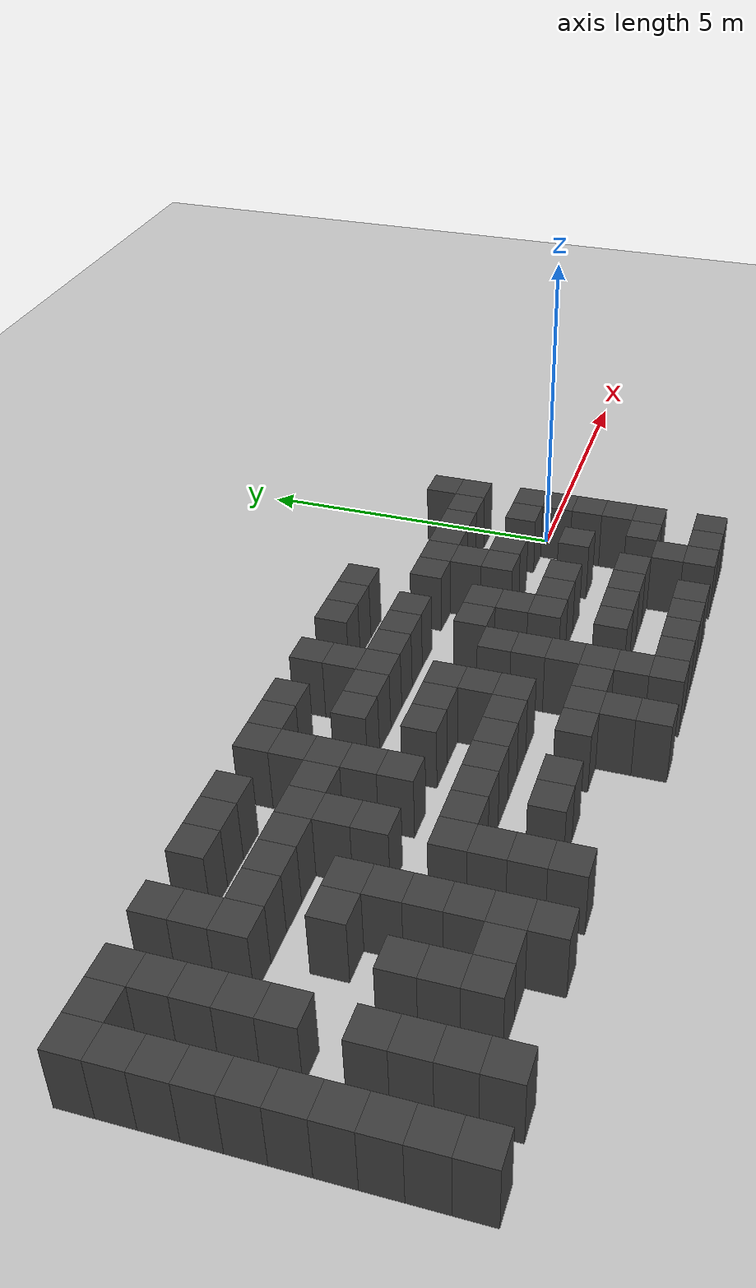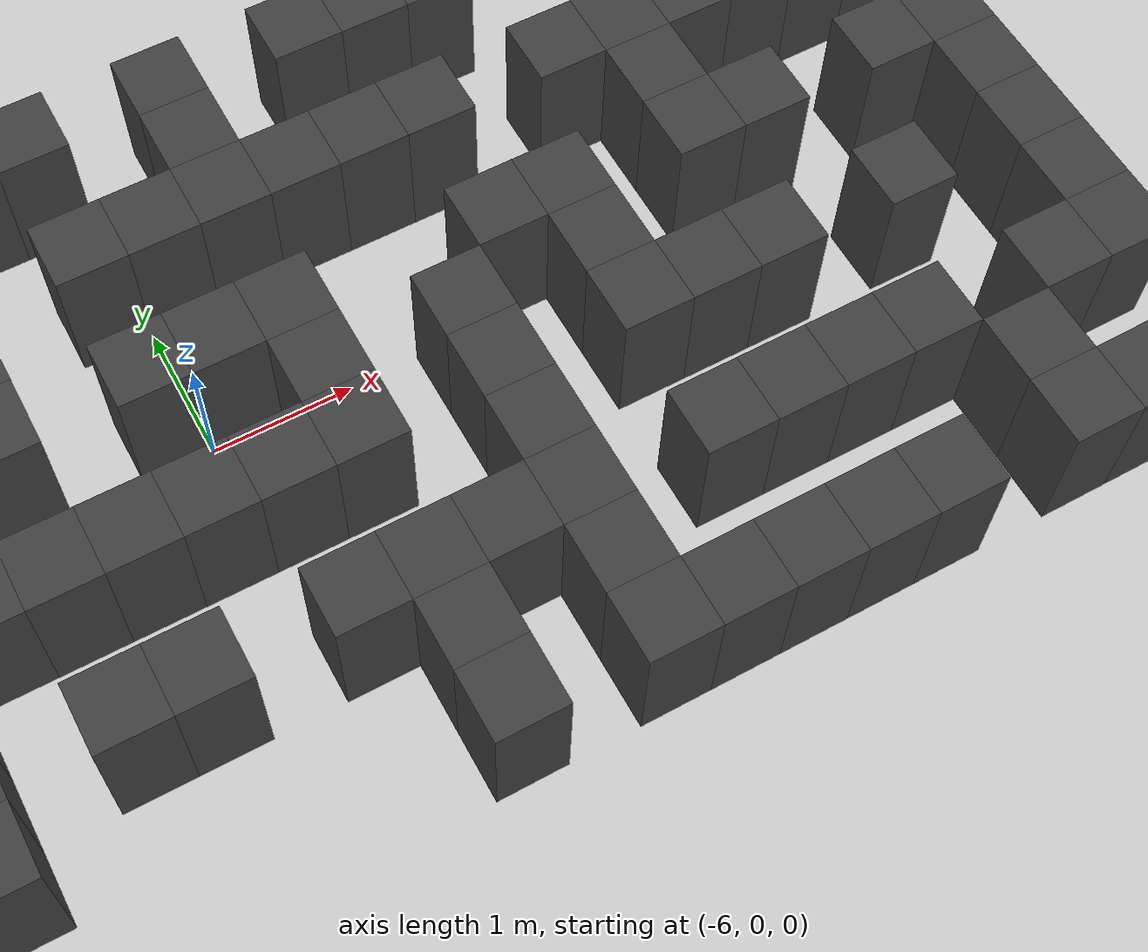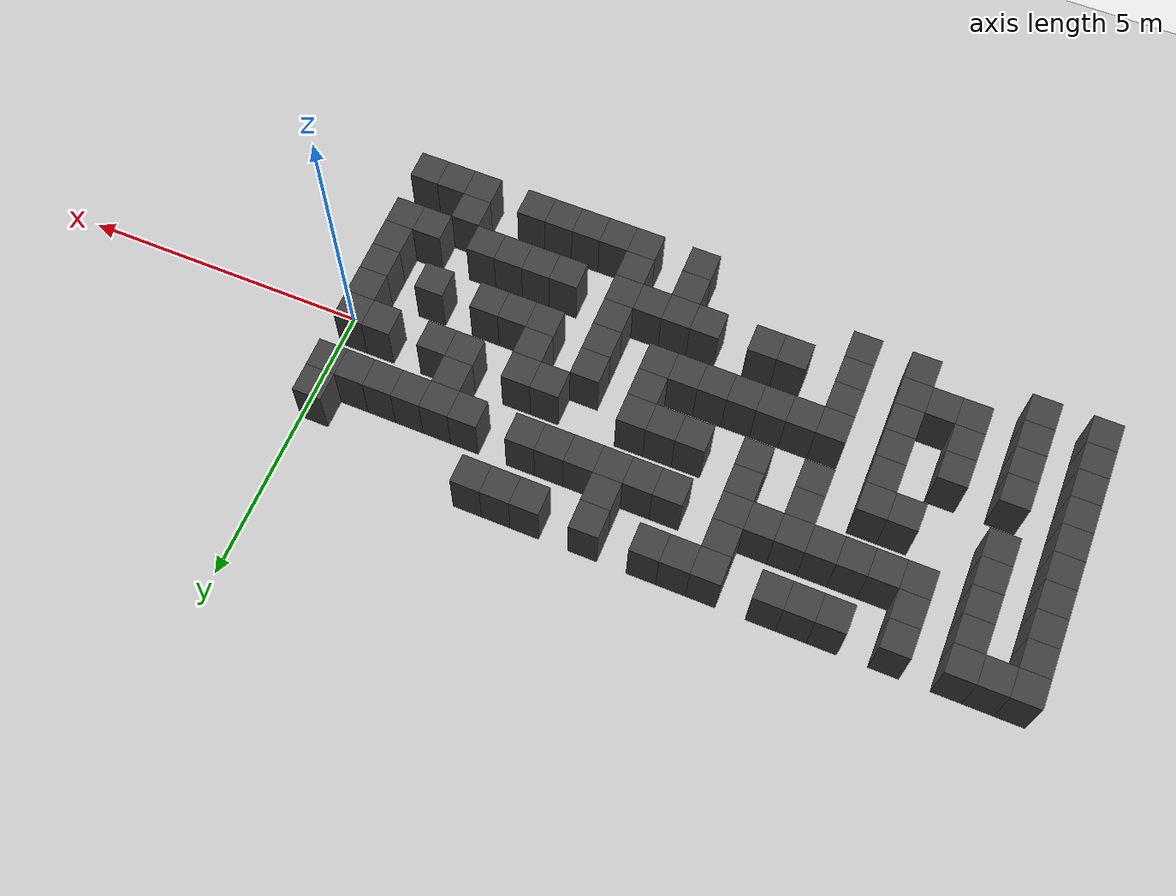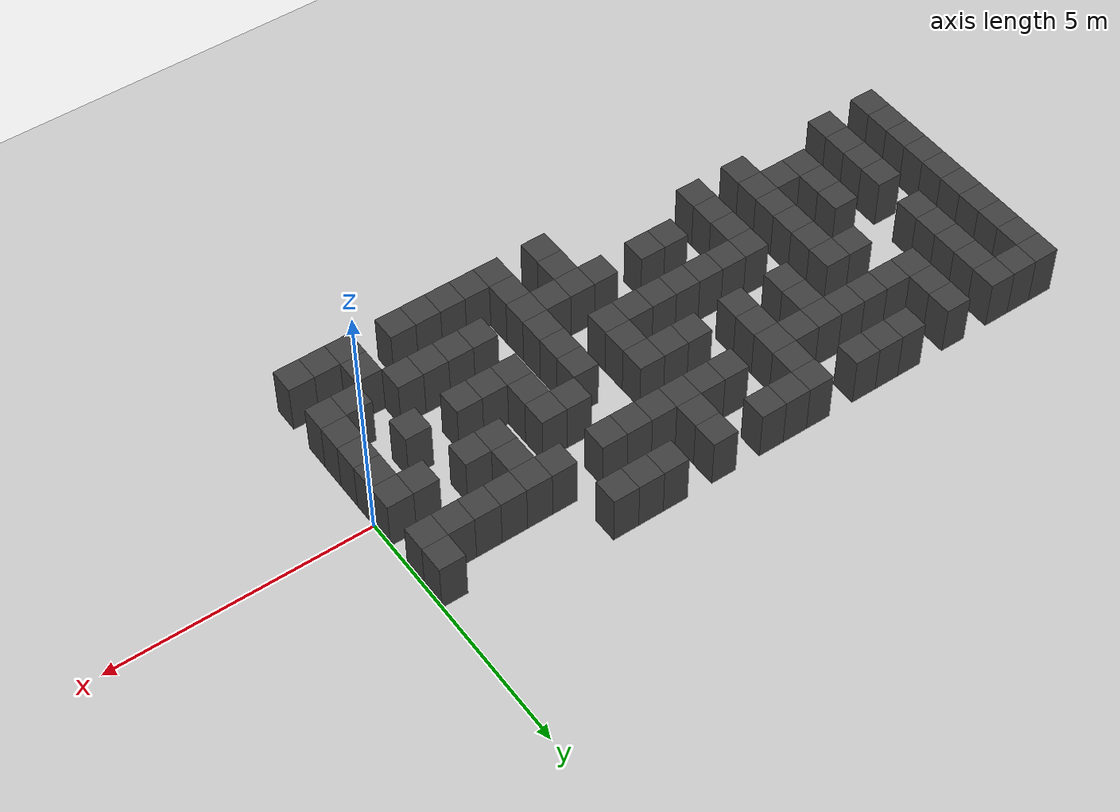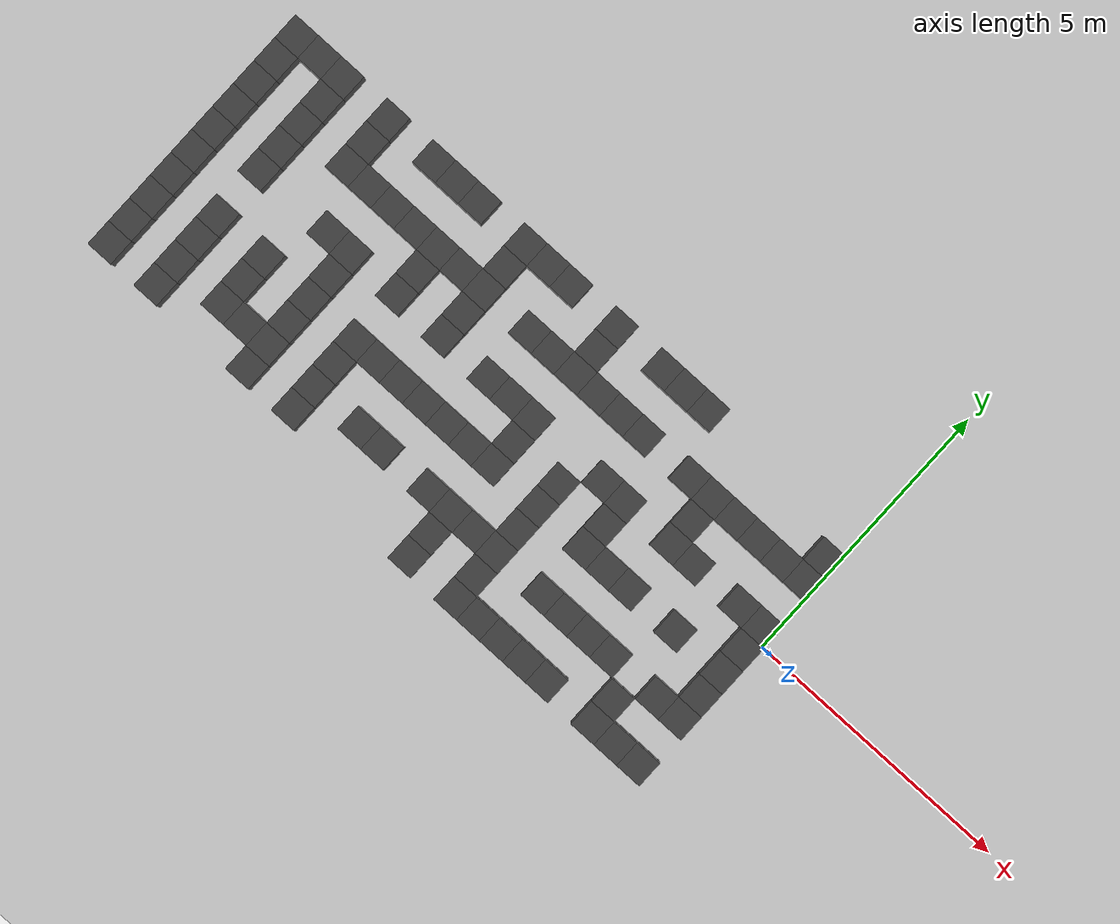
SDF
<sdf version="1.7">
 <world name="map_16668">
  <model name="ground_plane">
   <static>true</static>
   <link name="link">
    <collision name="collision">
     <geometry><plane><normal>0 0 1</normal><size>200 200</size></plane></geometry>
    </collision>
    <visual name="visual">
     <geometry><plane><normal>0 0 1</normal><size>200 200</size></plane></geometry>
     <material><ambient>0.8 0.8 0.8 1</ambient><diffuse>0.8 0.8 0.8 1</diffuse></material>
    </visual>
   </link>
  </model>
  <model name="maze_environment">
   <static>true</static>
   <link name="wall_480">
    <pose>-12.250 2.250 0.500 0 0 0</pose>
    <collision name="col"><geometry><box><size>0.5 0.5 1.0</size></box></geometry></collision>
    <visual name="vis">
     <geometry><box><size>0.5 0.5 1.0</size></box></geometry>
     <material><ambient>0.15 0.15 0.15 1</ambient><diffuse>0.25 0.25 0.25 1</diffuse></material>
    </visual>
   </link>
   <link name="wall_481">
    <pose>-11.750 2.250 0.500 0 0 0</pose>
    <collision name="col"><geometry><box><size>0.5 0.5 1.0</size></box></geometry></collision>
    <visual name="vis">
     <geometry><box><size>0.5 0.5 1.0</size></box></geometry>
     <material><ambient>0.15 0.15 0.15 1</ambient><diffuse>0.25 0.25 0.25 1</diffuse></material>
    </visual>
   </link>
   <link name="wall_482">
    <pose>-11.250 2.250 0.500 0 0 0</pose>
    <collision name="col"><geometry><box><size>0.5 0.5 1.0</size></box></geometry></collision>
    <visual name="vis">
     <geometry><box><size>0.5 0.5 1.0</size></box></geometry>
     <material><ambient>0.15 0.15 0.15 1</ambient><diffuse>0.25 0.25 0.25 1</diffuse></material>
    </visual>
   </link>
   <link name="wall_483">
    <pose>-10.250 2.250 0.500 0 0 0</pose>
    <collision name="col"><geometry><box><size>0.5 0.5 1.0</size></box></geometry></collision>
    <visual name="vis">
     <geometry><box><size>0.5 0.5 1.0</size></box></geometry>
     <material><ambient>0.15 0.15 0.15 1</ambient><diffuse>0.25 0.25 0.25 1</diffuse></material>
    </visual>
   </link>
   <link name="wall_484">
    <pose>-9.250 2.250 0.500 0 0 0</pose>
    <collision name="col"><geometry><box><size>0.5 0.5 1.0</size></box></geometry></collision>
    <visual name="vis">
     <geometry><box><size>0.5 0.5 1.0</size></box></geometry>
     <material><ambient>0.15 0.15 0.15 1</ambient><diffuse>0.25 0.25 0.25 1</diffuse></material>
    </visual>
   </link>
   <link name="wall_485">
    <pose>-8.750 2.250 0.500 0 0 0</pose>
    <collision name="col"><geometry><box><size>0.5 0.5 1.0</size></box></geometry></collision>
    <visual name="vis">
     <geometry><box><size>0.5 0.5 1.0</size></box></geometry>
     <material><ambient>0.15 0.15 0.15 1</ambient><diffuse>0.25 0.25 0.25 1</diffuse></material>
    </visual>
   </link>
   <link name="wall_486">
    <pose>-8.250 2.250 0.500 0 0 0</pose>
    <collision name="col"><geometry><box><size>0.5 0.5 1.0</size></box></geometry></collision>
    <visual name="vis">
     <geometry><box><size>0.5 0.5 1.0</size></box></geometry>
     <material><ambient>0.15 0.15 0.15 1</ambient><diffuse>0.25 0.25 0.25 1</diffuse></material>
    </visual>
   </link>
   <link name="wall_487">
    <pose>-7.250 2.250 0.500 0 0 0</pose>
    <collision name="col"><geometry><box><size>0.5 0.5 1.0</size></box></geometry></collision>
    <visual name="vis">
     <geometry><box><size>0.5 0.5 1.0</size></box></geometry>
     <material><ambient>0.15 0.15 0.15 1</ambient><diffuse>0.25 0.25 0.25 1</diffuse></material>
    </visual>
   </link>
   <link name="wall_488">
    <pose>-6.750 2.250 0.500 0 0 0</pose>
    <collision name="col"><geometry><box><size>0.5 0.5 1.0</size></box></geometry></collision>
    <visual name="vis">
     <geometry><box><size>0.5 0.5 1.0</size></box></geometry>
     <material><ambient>0.15 0.15 0.15 1</ambient><diffuse>0.25 0.25 0.25 1</diffuse></material>
    </visual>
   </link>
   <link name="wall_489">
    <pose>-6.250 2.250 0.500 0 0 0</pose>
    <collision name="col"><geometry><box><size>0.5 0.5 1.0</size></box></geometry></collision>
    <visual name="vis">
     <geometry><box><size>0.5 0.5 1.0</size></box></geometry>
     <material><ambient>0.15 0.15 0.15 1</ambient><diffuse>0.25 0.25 0.25 1</diffuse></material>
    </visual>
   </link>
   <link name="wall_490">
    <pose>-5.250 2.250 0.500 0 0 0</pose>
    <collision name="col"><geometry><box><size>0.5 0.5 1.0</size></box></geometry></collision>
    <visual name="vis">
     <geometry><box><size>0.5 0.5 1.0</size></box></geometry>
     <material><ambient>0.15 0.15 0.15 1</ambient><diffuse>0.25 0.25 0.25 1</diffuse></material>
    </visual>
   </link>
   <link name="wall_491">
    <pose>-4.250 2.250 0.500 0 0 0</pose>
    <collision name="col"><geometry><box><size>0.5 0.5 1.0</size></box></geometry></collision>
    <visual name="vis">
     <geometry><box><size>0.5 0.5 1.0</size></box></geometry>
     <material><ambient>0.15 0.15 0.15 1</ambient><diffuse>0.25 0.25 0.25 1</diffuse></material>
    </visual>
   </link>
   <link name="wall_492">
    <pose>-3.750 2.250 0.500 0 0 0</pose>
    <collision name="col"><geometry><box><size>0.5 0.5 1.0</size></box></geometry></collision>
    <visual name="vis">
     <geometry><box><size>0.5 0.5 1.0</size></box></geometry>
     <material><ambient>0.15 0.15 0.15 1</ambient><diffuse>0.25 0.25 0.25 1</diffuse></material>
    </visual>
   </link>
   <link name="wall_493">
    <pose>-3.250 2.250 0.500 0 0 0</pose>
    <collision name="col"><geometry><box><size>0.5 0.5 1.0</size></box></geometry></collision>
    <visual name="vis">
     <geometry><box><size>0.5 0.5 1.0</size></box></geometry>
     <material><ambient>0.15 0.15 0.15 1</ambient><diffuse>0.25 0.25 0.25 1</diffuse></material>
    </visual>
   </link>
   <link name="wall_514">
    <pose>-12.250 1.750 0.500 0 0 0</pose>
    <collision name="col"><geometry><box><size>0.5 0.5 1.0</size></box></geometry></collision>
    <visual name="vis">
     <geometry><box><size>0.5 0.5 1.0</size></box></geometry>
     <material><ambient>0.15 0.15 0.15 1</ambient><diffuse>0.25 0.25 0.25 1</diffuse></material>
    </visual>
   </link>
   <link name="wall_515">
    <pose>-11.250 1.750 0.500 0 0 0</pose>
    <collision name="col"><geometry><box><size>0.5 0.5 1.0</size></box></geometry></collision>
    <visual name="vis">
     <geometry><box><size>0.5 0.5 1.0</size></box></geometry>
     <material><ambient>0.15 0.15 0.15 1</ambient><diffuse>0.25 0.25 0.25 1</diffuse></material>
    </visual>
   </link>
   <link name="wall_516">
    <pose>-10.250 1.750 0.500 0 0 0</pose>
    <collision name="col"><geometry><box><size>0.5 0.5 1.0</size></box></geometry></collision>
    <visual name="vis">
     <geometry><box><size>0.5 0.5 1.0</size></box></geometry>
     <material><ambient>0.15 0.15 0.15 1</ambient><diffuse>0.25 0.25 0.25 1</diffuse></material>
    </visual>
   </link>
   <link name="wall_517">
    <pose>-7.250 1.750 0.500 0 0 0</pose>
    <collision name="col"><geometry><box><size>0.5 0.5 1.0</size></box></geometry></collision>
    <visual name="vis">
     <geometry><box><size>0.5 0.5 1.0</size></box></geometry>
     <material><ambient>0.15 0.15 0.15 1</ambient><diffuse>0.25 0.25 0.25 1</diffuse></material>
    </visual>
   </link>
   <link name="wall_518">
    <pose>-5.250 1.750 0.500 0 0 0</pose>
    <collision name="col"><geometry><box><size>0.5 0.5 1.0</size></box></geometry></collision>
    <visual name="vis">
     <geometry><box><size>0.5 0.5 1.0</size></box></geometry>
     <material><ambient>0.15 0.15 0.15 1</ambient><diffuse>0.25 0.25 0.25 1</diffuse></material>
    </visual>
   </link>
   <link name="wall_519">
    <pose>-0.250 1.750 0.500 0 0 0</pose>
    <collision name="col"><geometry><box><size>0.5 0.5 1.0</size></box></geometry></collision>
    <visual name="vis">
     <geometry><box><size>0.5 0.5 1.0</size></box></geometry>
     <material><ambient>0.15 0.15 0.15 1</ambient><diffuse>0.25 0.25 0.25 1</diffuse></material>
    </visual>
   </link>
   <link name="wall_528">
    <pose>-12.250 1.250 0.500 0 0 0</pose>
    <collision name="col"><geometry><box><size>0.5 0.5 1.0</size></box></geometry></collision>
    <visual name="vis">
     <geometry><box><size>0.5 0.5 1.0</size></box></geometry>
     <material><ambient>0.15 0.15 0.15 1</ambient><diffuse>0.25 0.25 0.25 1</diffuse></material>
    </visual>
   </link>
   <link name="wall_529">
    <pose>-11.250 1.250 0.500 0 0 0</pose>
    <collision name="col"><geometry><box><size>0.5 0.5 1.0</size></box></geometry></collision>
    <visual name="vis">
     <geometry><box><size>0.5 0.5 1.0</size></box></geometry>
     <material><ambient>0.15 0.15 0.15 1</ambient><diffuse>0.25 0.25 0.25 1</diffuse></material>
    </visual>
   </link>
   <link name="wall_530">
    <pose>-10.250 1.250 0.500 0 0 0</pose>
    <collision name="col"><geometry><box><size>0.5 0.5 1.0</size></box></geometry></collision>
    <visual name="vis">
     <geometry><box><size>0.5 0.5 1.0</size></box></geometry>
     <material><ambient>0.15 0.15 0.15 1</ambient><diffuse>0.25 0.25 0.25 1</diffuse></material>
    </visual>
   </link>
   <link name="wall_531">
    <pose>-9.750 1.250 0.500 0 0 0</pose>
    <collision name="col"><geometry><box><size>0.5 0.5 1.0</size></box></geometry></collision>
    <visual name="vis">
     <geometry><box><size>0.5 0.5 1.0</size></box></geometry>
     <material><ambient>0.15 0.15 0.15 1</ambient><diffuse>0.25 0.25 0.25 1</diffuse></material>
    </visual>
   </link>
   <link name="wall_532">
    <pose>-9.250 1.250 0.500 0 0 0</pose>
    <collision name="col"><geometry><box><size>0.5 0.5 1.0</size></box></geometry></collision>
    <visual name="vis">
     <geometry><box><size>0.5 0.5 1.0</size></box></geometry>
     <material><ambient>0.15 0.15 0.15 1</ambient><diffuse>0.25 0.25 0.25 1</diffuse></material>
    </visual>
   </link>
   <link name="wall_533">
    <pose>-8.750 1.250 0.500 0 0 0</pose>
    <collision name="col"><geometry><box><size>0.5 0.5 1.0</size></box></geometry></collision>
    <visual name="vis">
     <geometry><box><size>0.5 0.5 1.0</size></box></geometry>
     <material><ambient>0.15 0.15 0.15 1</ambient><diffuse>0.25 0.25 0.25 1</diffuse></material>
    </visual>
   </link>
   <link name="wall_534">
    <pose>-8.250 1.250 0.500 0 0 0</pose>
    <collision name="col"><geometry><box><size>0.5 0.5 1.0</size></box></geometry></collision>
    <visual name="vis">
     <geometry><box><size>0.5 0.5 1.0</size></box></geometry>
     <material><ambient>0.15 0.15 0.15 1</ambient><diffuse>0.25 0.25 0.25 1</diffuse></material>
    </visual>
   </link>
   <link name="wall_535">
    <pose>-7.750 1.250 0.500 0 0 0</pose>
    <collision name="col"><geometry><box><size>0.5 0.5 1.0</size></box></geometry></collision>
    <visual name="vis">
     <geometry><box><size>0.5 0.5 1.0</size></box></geometry>
     <material><ambient>0.15 0.15 0.15 1</ambient><diffuse>0.25 0.25 0.25 1</diffuse></material>
    </visual>
   </link>
   <link name="wall_536">
    <pose>-7.250 1.250 0.500 0 0 0</pose>
    <collision name="col"><geometry><box><size>0.5 0.5 1.0</size></box></geometry></collision>
    <visual name="vis">
     <geometry><box><size>0.5 0.5 1.0</size></box></geometry>
     <material><ambient>0.15 0.15 0.15 1</ambient><diffuse>0.25 0.25 0.25 1</diffuse></material>
    </visual>
   </link>
   <link name="wall_537">
    <pose>-6.250 1.250 0.500 0 0 0</pose>
    <collision name="col"><geometry><box><size>0.5 0.5 1.0</size></box></geometry></collision>
    <visual name="vis">
     <geometry><box><size>0.5 0.5 1.0</size></box></geometry>
     <material><ambient>0.15 0.15 0.15 1</ambient><diffuse>0.25 0.25 0.25 1</diffuse></material>
    </visual>
   </link>
   <link name="wall_538">
    <pose>-5.750 1.250 0.500 0 0 0</pose>
    <collision name="col"><geometry><box><size>0.5 0.5 1.0</size></box></geometry></collision>
    <visual name="vis">
     <geometry><box><size>0.5 0.5 1.0</size></box></geometry>
     <material><ambient>0.15 0.15 0.15 1</ambient><diffuse>0.25 0.25 0.25 1</diffuse></material>
    </visual>
   </link>
   <link name="wall_539">
    <pose>-5.250 1.250 0.500 0 0 0</pose>
    <collision name="col"><geometry><box><size>0.5 0.5 1.0</size></box></geometry></collision>
    <visual name="vis">
     <geometry><box><size>0.5 0.5 1.0</size></box></geometry>
     <material><ambient>0.15 0.15 0.15 1</ambient><diffuse>0.25 0.25 0.25 1</diffuse></material>
    </visual>
   </link>
   <link name="wall_540">
    <pose>-4.750 1.250 0.500 0 0 0</pose>
    <collision name="col"><geometry><box><size>0.5 0.5 1.0</size></box></geometry></collision>
    <visual name="vis">
     <geometry><box><size>0.5 0.5 1.0</size></box></geometry>
     <material><ambient>0.15 0.15 0.15 1</ambient><diffuse>0.25 0.25 0.25 1</diffuse></material>
    </visual>
   </link>
   <link name="wall_541">
    <pose>-4.250 1.250 0.500 0 0 0</pose>
    <collision name="col"><geometry><box><size>0.5 0.5 1.0</size></box></geometry></collision>
    <visual name="vis">
     <geometry><box><size>0.5 0.5 1.0</size></box></geometry>
     <material><ambient>0.15 0.15 0.15 1</ambient><diffuse>0.25 0.25 0.25 1</diffuse></material>
    </visual>
   </link>
   <link name="wall_542">
    <pose>-3.750 1.250 0.500 0 0 0</pose>
    <collision name="col"><geometry><box><size>0.5 0.5 1.0</size></box></geometry></collision>
    <visual name="vis">
     <geometry><box><size>0.5 0.5 1.0</size></box></geometry>
     <material><ambient>0.15 0.15 0.15 1</ambient><diffuse>0.25 0.25 0.25 1</diffuse></material>
    </visual>
   </link>
   <link name="wall_543">
    <pose>-2.750 1.250 0.500 0 0 0</pose>
    <collision name="col"><geometry><box><size>0.5 0.5 1.0</size></box></geometry></collision>
    <visual name="vis">
     <geometry><box><size>0.5 0.5 1.0</size></box></geometry>
     <material><ambient>0.15 0.15 0.15 1</ambient><diffuse>0.25 0.25 0.25 1</diffuse></material>
    </visual>
   </link>
   <link name="wall_544">
    <pose>-2.250 1.250 0.500 0 0 0</pose>
    <collision name="col"><geometry><box><size>0.5 0.5 1.0</size></box></geometry></collision>
    <visual name="vis">
     <geometry><box><size>0.5 0.5 1.0</size></box></geometry>
     <material><ambient>0.15 0.15 0.15 1</ambient><diffuse>0.25 0.25 0.25 1</diffuse></material>
    </visual>
   </link>
   <link name="wall_545">
    <pose>-1.750 1.250 0.500 0 0 0</pose>
    <collision name="col"><geometry><box><size>0.5 0.5 1.0</size></box></geometry></collision>
    <visual name="vis">
     <geometry><box><size>0.5 0.5 1.0</size></box></geometry>
     <material><ambient>0.15 0.15 0.15 1</ambient><diffuse>0.25 0.25 0.25 1</diffuse></material>
    </visual>
   </link>
   <link name="wall_546">
    <pose>-1.250 1.250 0.500 0 0 0</pose>
    <collision name="col"><geometry><box><size>0.5 0.5 1.0</size></box></geometry></collision>
    <visual name="vis">
     <geometry><box><size>0.5 0.5 1.0</size></box></geometry>
     <material><ambient>0.15 0.15 0.15 1</ambient><diffuse>0.25 0.25 0.25 1</diffuse></material>
    </visual>
   </link>
   <link name="wall_547">
    <pose>-0.750 1.250 0.500 0 0 0</pose>
    <collision name="col"><geometry><box><size>0.5 0.5 1.0</size></box></geometry></collision>
    <visual name="vis">
     <geometry><box><size>0.5 0.5 1.0</size></box></geometry>
     <material><ambient>0.15 0.15 0.15 1</ambient><diffuse>0.25 0.25 0.25 1</diffuse></material>
    </visual>
   </link>
   <link name="wall_548">
    <pose>-0.250 1.250 0.500 0 0 0</pose>
    <collision name="col"><geometry><box><size>0.5 0.5 1.0</size></box></geometry></collision>
    <visual name="vis">
     <geometry><box><size>0.5 0.5 1.0</size></box></geometry>
     <material><ambient>0.15 0.15 0.15 1</ambient><diffuse>0.25 0.25 0.25 1</diffuse></material>
    </visual>
   </link>
   <link name="wall_565">
    <pose>-12.250 0.750 0.500 0 0 0</pose>
    <collision name="col"><geometry><box><size>0.5 0.5 1.0</size></box></geometry></collision>
    <visual name="vis">
     <geometry><box><size>0.5 0.5 1.0</size></box></geometry>
     <material><ambient>0.15 0.15 0.15 1</ambient><diffuse>0.25 0.25 0.25 1</diffuse></material>
    </visual>
   </link>
   <link name="wall_566">
    <pose>-11.250 0.750 0.500 0 0 0</pose>
    <collision name="col"><geometry><box><size>0.5 0.5 1.0</size></box></geometry></collision>
    <visual name="vis">
     <geometry><box><size>0.5 0.5 1.0</size></box></geometry>
     <material><ambient>0.15 0.15 0.15 1</ambient><diffuse>0.25 0.25 0.25 1</diffuse></material>
    </visual>
   </link>
   <link name="wall_567">
    <pose>-8.250 0.750 0.500 0 0 0</pose>
    <collision name="col"><geometry><box><size>0.5 0.5 1.0</size></box></geometry></collision>
    <visual name="vis">
     <geometry><box><size>0.5 0.5 1.0</size></box></geometry>
     <material><ambient>0.15 0.15 0.15 1</ambient><diffuse>0.25 0.25 0.25 1</diffuse></material>
    </visual>
   </link>
   <link name="wall_568">
    <pose>-7.250 0.750 0.500 0 0 0</pose>
    <collision name="col"><geometry><box><size>0.5 0.5 1.0</size></box></geometry></collision>
    <visual name="vis">
     <geometry><box><size>0.5 0.5 1.0</size></box></geometry>
     <material><ambient>0.15 0.15 0.15 1</ambient><diffuse>0.25 0.25 0.25 1</diffuse></material>
    </visual>
   </link>
   <link name="wall_569">
    <pose>-2.250 0.750 0.500 0 0 0</pose>
    <collision name="col"><geometry><box><size>0.5 0.5 1.0</size></box></geometry></collision>
    <visual name="vis">
     <geometry><box><size>0.5 0.5 1.0</size></box></geometry>
     <material><ambient>0.15 0.15 0.15 1</ambient><diffuse>0.25 0.25 0.25 1</diffuse></material>
    </visual>
   </link>
   <link name="wall_575">
    <pose>-12.250 0.250 0.500 0 0 0</pose>
    <collision name="col"><geometry><box><size>0.5 0.5 1.0</size></box></geometry></collision>
    <visual name="vis">
     <geometry><box><size>0.5 0.5 1.0</size></box></geometry>
     <material><ambient>0.15 0.15 0.15 1</ambient><diffuse>0.25 0.25 0.25 1</diffuse></material>
    </visual>
   </link>
   <link name="wall_576">
    <pose>-11.250 0.250 0.500 0 0 0</pose>
    <collision name="col"><geometry><box><size>0.5 0.5 1.0</size></box></geometry></collision>
    <visual name="vis">
     <geometry><box><size>0.5 0.5 1.0</size></box></geometry>
     <material><ambient>0.15 0.15 0.15 1</ambient><diffuse>0.25 0.25 0.25 1</diffuse></material>
    </visual>
   </link>
   <link name="wall_577">
    <pose>-9.750 0.250 0.500 0 0 0</pose>
    <collision name="col"><geometry><box><size>0.5 0.5 1.0</size></box></geometry></collision>
    <visual name="vis">
     <geometry><box><size>0.5 0.5 1.0</size></box></geometry>
     <material><ambient>0.15 0.15 0.15 1</ambient><diffuse>0.25 0.25 0.25 1</diffuse></material>
    </visual>
   </link>
   <link name="wall_578">
    <pose>-9.250 0.250 0.500 0 0 0</pose>
    <collision name="col"><geometry><box><size>0.5 0.5 1.0</size></box></geometry></collision>
    <visual name="vis">
     <geometry><box><size>0.5 0.5 1.0</size></box></geometry>
     <material><ambient>0.15 0.15 0.15 1</ambient><diffuse>0.25 0.25 0.25 1</diffuse></material>
    </visual>
   </link>
   <link name="wall_579">
    <pose>-8.250 0.250 0.500 0 0 0</pose>
    <collision name="col"><geometry><box><size>0.5 0.5 1.0</size></box></geometry></collision>
    <visual name="vis">
     <geometry><box><size>0.5 0.5 1.0</size></box></geometry>
     <material><ambient>0.15 0.15 0.15 1</ambient><diffuse>0.25 0.25 0.25 1</diffuse></material>
    </visual>
   </link>
   <link name="wall_580">
    <pose>-7.250 0.250 0.500 0 0 0</pose>
    <collision name="col"><geometry><box><size>0.5 0.5 1.0</size></box></geometry></collision>
    <visual name="vis">
     <geometry><box><size>0.5 0.5 1.0</size></box></geometry>
     <material><ambient>0.15 0.15 0.15 1</ambient><diffuse>0.25 0.25 0.25 1</diffuse></material>
    </visual>
   </link>
   <link name="wall_581">
    <pose>-6.250 0.250 0.500 0 0 0</pose>
    <collision name="col"><geometry><box><size>0.5 0.5 1.0</size></box></geometry></collision>
    <visual name="vis">
     <geometry><box><size>0.5 0.5 1.0</size></box></geometry>
     <material><ambient>0.15 0.15 0.15 1</ambient><diffuse>0.25 0.25 0.25 1</diffuse></material>
    </visual>
   </link>
   <link name="wall_582">
    <pose>-5.750 0.250 0.500 0 0 0</pose>
    <collision name="col"><geometry><box><size>0.5 0.5 1.0</size></box></geometry></collision>
    <visual name="vis">
     <geometry><box><size>0.5 0.5 1.0</size></box></geometry>
     <material><ambient>0.15 0.15 0.15 1</ambient><diffuse>0.25 0.25 0.25 1</diffuse></material>
    </visual>
   </link>
   <link name="wall_583">
    <pose>-5.250 0.250 0.500 0 0 0</pose>
    <collision name="col"><geometry><box><size>0.5 0.5 1.0</size></box></geometry></collision>
    <visual name="vis">
     <geometry><box><size>0.5 0.5 1.0</size></box></geometry>
     <material><ambient>0.15 0.15 0.15 1</ambient><diffuse>0.25 0.25 0.25 1</diffuse></material>
    </visual>
   </link>
   <link name="wall_584">
    <pose>-3.750 0.250 0.500 0 0 0</pose>
    <collision name="col"><geometry><box><size>0.5 0.5 1.0</size></box></geometry></collision>
    <visual name="vis">
     <geometry><box><size>0.5 0.5 1.0</size></box></geometry>
     <material><ambient>0.15 0.15 0.15 1</ambient><diffuse>0.25 0.25 0.25 1</diffuse></material>
    </visual>
   </link>
   <link name="wall_585">
    <pose>-3.250 0.250 0.500 0 0 0</pose>
    <collision name="col"><geometry><box><size>0.5 0.5 1.0</size></box></geometry></collision>
    <visual name="vis">
     <geometry><box><size>0.5 0.5 1.0</size></box></geometry>
     <material><ambient>0.15 0.15 0.15 1</ambient><diffuse>0.25 0.25 0.25 1</diffuse></material>
    </visual>
   </link>
   <link name="wall_586">
    <pose>-2.250 0.250 0.500 0 0 0</pose>
    <collision name="col"><geometry><box><size>0.5 0.5 1.0</size></box></geometry></collision>
    <visual name="vis">
     <geometry><box><size>0.5 0.5 1.0</size></box></geometry>
     <material><ambient>0.15 0.15 0.15 1</ambient><diffuse>0.25 0.25 0.25 1</diffuse></material>
    </visual>
   </link>
   <link name="wall_587">
    <pose>-1.750 0.250 0.500 0 0 0</pose>
    <collision name="col"><geometry><box><size>0.5 0.5 1.0</size></box></geometry></collision>
    <visual name="vis">
     <geometry><box><size>0.5 0.5 1.0</size></box></geometry>
     <material><ambient>0.15 0.15 0.15 1</ambient><diffuse>0.25 0.25 0.25 1</diffuse></material>
    </visual>
   </link>
   <link name="wall_588">
    <pose>-0.750 0.250 0.500 0 0 0</pose>
    <collision name="col"><geometry><box><size>0.5 0.5 1.0</size></box></geometry></collision>
    <visual name="vis">
     <geometry><box><size>0.5 0.5 1.0</size></box></geometry>
     <material><ambient>0.15 0.15 0.15 1</ambient><diffuse>0.25 0.25 0.25 1</diffuse></material>
    </visual>
   </link>
   <link name="wall_589">
    <pose>-0.250 0.250 0.500 0 0 0</pose>
    <collision name="col"><geometry><box><size>0.5 0.5 1.0</size></box></geometry></collision>
    <visual name="vis">
     <geometry><box><size>0.5 0.5 1.0</size></box></geometry>
     <material><ambient>0.15 0.15 0.15 1</ambient><diffuse>0.25 0.25 0.25 1</diffuse></material>
    </visual>
   </link>
   <link name="wall_605">
    <pose>-12.250 -0.250 0.500 0 0 0</pose>
    <collision name="col"><geometry><box><size>0.5 0.5 1.0</size></box></geometry></collision>
    <visual name="vis">
     <geometry><box><size>0.5 0.5 1.0</size></box></geometry>
     <material><ambient>0.15 0.15 0.15 1</ambient><diffuse>0.25 0.25 0.25 1</diffuse></material>
    </visual>
   </link>
   <link name="wall_606">
    <pose>-9.250 -0.250 0.500 0 0 0</pose>
    <collision name="col"><geometry><box><size>0.5 0.5 1.0</size></box></geometry></collision>
    <visual name="vis">
     <geometry><box><size>0.5 0.5 1.0</size></box></geometry>
     <material><ambient>0.15 0.15 0.15 1</ambient><diffuse>0.25 0.25 0.25 1</diffuse></material>
    </visual>
   </link>
   <link name="wall_607">
    <pose>-5.250 -0.250 0.500 0 0 0</pose>
    <collision name="col"><geometry><box><size>0.5 0.5 1.0</size></box></geometry></collision>
    <visual name="vis">
     <geometry><box><size>0.5 0.5 1.0</size></box></geometry>
     <material><ambient>0.15 0.15 0.15 1</ambient><diffuse>0.25 0.25 0.25 1</diffuse></material>
    </visual>
   </link>
   <link name="wall_608">
    <pose>-4.250 -0.250 0.500 0 0 0</pose>
    <collision name="col"><geometry><box><size>0.5 0.5 1.0</size></box></geometry></collision>
    <visual name="vis">
     <geometry><box><size>0.5 0.5 1.0</size></box></geometry>
     <material><ambient>0.15 0.15 0.15 1</ambient><diffuse>0.25 0.25 0.25 1</diffuse></material>
    </visual>
   </link>
   <link name="wall_609">
    <pose>-3.250 -0.250 0.500 0 0 0</pose>
    <collision name="col"><geometry><box><size>0.5 0.5 1.0</size></box></geometry></collision>
    <visual name="vis">
     <geometry><box><size>0.5 0.5 1.0</size></box></geometry>
     <material><ambient>0.15 0.15 0.15 1</ambient><diffuse>0.25 0.25 0.25 1</diffuse></material>
    </visual>
   </link>
   <link name="wall_610">
    <pose>-0.250 -0.250 0.500 0 0 0</pose>
    <collision name="col"><geometry><box><size>0.5 0.5 1.0</size></box></geometry></collision>
    <visual name="vis">
     <geometry><box><size>0.5 0.5 1.0</size></box></geometry>
     <material><ambient>0.15 0.15 0.15 1</ambient><diffuse>0.25 0.25 0.25 1</diffuse></material>
    </visual>
   </link>
   <link name="wall_618">
    <pose>-12.250 -0.750 0.500 0 0 0</pose>
    <collision name="col"><geometry><box><size>0.5 0.5 1.0</size></box></geometry></collision>
    <visual name="vis">
     <geometry><box><size>0.5 0.5 1.0</size></box></geometry>
     <material><ambient>0.15 0.15 0.15 1</ambient><diffuse>0.25 0.25 0.25 1</diffuse></material>
    </visual>
   </link>
   <link name="wall_619">
    <pose>-11.250 -0.750 0.500 0 0 0</pose>
    <collision name="col"><geometry><box><size>0.5 0.5 1.0</size></box></geometry></collision>
    <visual name="vis">
     <geometry><box><size>0.5 0.5 1.0</size></box></geometry>
     <material><ambient>0.15 0.15 0.15 1</ambient><diffuse>0.25 0.25 0.25 1</diffuse></material>
    </visual>
   </link>
   <link name="wall_620">
    <pose>-10.250 -0.750 0.500 0 0 0</pose>
    <collision name="col"><geometry><box><size>0.5 0.5 1.0</size></box></geometry></collision>
    <visual name="vis">
     <geometry><box><size>0.5 0.5 1.0</size></box></geometry>
     <material><ambient>0.15 0.15 0.15 1</ambient><diffuse>0.25 0.25 0.25 1</diffuse></material>
    </visual>
   </link>
   <link name="wall_621">
    <pose>-9.250 -0.750 0.500 0 0 0</pose>
    <collision name="col"><geometry><box><size>0.5 0.5 1.0</size></box></geometry></collision>
    <visual name="vis">
     <geometry><box><size>0.5 0.5 1.0</size></box></geometry>
     <material><ambient>0.15 0.15 0.15 1</ambient><diffuse>0.25 0.25 0.25 1</diffuse></material>
    </visual>
   </link>
   <link name="wall_622">
    <pose>-8.250 -0.750 0.500 0 0 0</pose>
    <collision name="col"><geometry><box><size>0.5 0.5 1.0</size></box></geometry></collision>
    <visual name="vis">
     <geometry><box><size>0.5 0.5 1.0</size></box></geometry>
     <material><ambient>0.15 0.15 0.15 1</ambient><diffuse>0.25 0.25 0.25 1</diffuse></material>
    </visual>
   </link>
   <link name="wall_623">
    <pose>-7.750 -0.750 0.500 0 0 0</pose>
    <collision name="col"><geometry><box><size>0.5 0.5 1.0</size></box></geometry></collision>
    <visual name="vis">
     <geometry><box><size>0.5 0.5 1.0</size></box></geometry>
     <material><ambient>0.15 0.15 0.15 1</ambient><diffuse>0.25 0.25 0.25 1</diffuse></material>
    </visual>
   </link>
   <link name="wall_624">
    <pose>-7.250 -0.750 0.500 0 0 0</pose>
    <collision name="col"><geometry><box><size>0.5 0.5 1.0</size></box></geometry></collision>
    <visual name="vis">
     <geometry><box><size>0.5 0.5 1.0</size></box></geometry>
     <material><ambient>0.15 0.15 0.15 1</ambient><diffuse>0.25 0.25 0.25 1</diffuse></material>
    </visual>
   </link>
   <link name="wall_625">
    <pose>-6.750 -0.750 0.500 0 0 0</pose>
    <collision name="col"><geometry><box><size>0.5 0.5 1.0</size></box></geometry></collision>
    <visual name="vis">
     <geometry><box><size>0.5 0.5 1.0</size></box></geometry>
     <material><ambient>0.15 0.15 0.15 1</ambient><diffuse>0.25 0.25 0.25 1</diffuse></material>
    </visual>
   </link>
   <link name="wall_626">
    <pose>-6.250 -0.750 0.500 0 0 0</pose>
    <collision name="col"><geometry><box><size>0.5 0.5 1.0</size></box></geometry></collision>
    <visual name="vis">
     <geometry><box><size>0.5 0.5 1.0</size></box></geometry>
     <material><ambient>0.15 0.15 0.15 1</ambient><diffuse>0.25 0.25 0.25 1</diffuse></material>
    </visual>
   </link>
   <link name="wall_627">
    <pose>-5.750 -0.750 0.500 0 0 0</pose>
    <collision name="col"><geometry><box><size>0.5 0.5 1.0</size></box></geometry></collision>
    <visual name="vis">
     <geometry><box><size>0.5 0.5 1.0</size></box></geometry>
     <material><ambient>0.15 0.15 0.15 1</ambient><diffuse>0.25 0.25 0.25 1</diffuse></material>
    </visual>
   </link>
   <link name="wall_628">
    <pose>-5.250 -0.750 0.500 0 0 0</pose>
    <collision name="col"><geometry><box><size>0.5 0.5 1.0</size></box></geometry></collision>
    <visual name="vis">
     <geometry><box><size>0.5 0.5 1.0</size></box></geometry>
     <material><ambient>0.15 0.15 0.15 1</ambient><diffuse>0.25 0.25 0.25 1</diffuse></material>
    </visual>
   </link>
   <link name="wall_629">
    <pose>-4.250 -0.750 0.500 0 0 0</pose>
    <collision name="col"><geometry><box><size>0.5 0.5 1.0</size></box></geometry></collision>
    <visual name="vis">
     <geometry><box><size>0.5 0.5 1.0</size></box></geometry>
     <material><ambient>0.15 0.15 0.15 1</ambient><diffuse>0.25 0.25 0.25 1</diffuse></material>
    </visual>
   </link>
   <link name="wall_630">
    <pose>-3.250 -0.750 0.500 0 0 0</pose>
    <collision name="col"><geometry><box><size>0.5 0.5 1.0</size></box></geometry></collision>
    <visual name="vis">
     <geometry><box><size>0.5 0.5 1.0</size></box></geometry>
     <material><ambient>0.15 0.15 0.15 1</ambient><diffuse>0.25 0.25 0.25 1</diffuse></material>
    </visual>
   </link>
   <link name="wall_631">
    <pose>-2.750 -0.750 0.500 0 0 0</pose>
    <collision name="col"><geometry><box><size>0.5 0.5 1.0</size></box></geometry></collision>
    <visual name="vis">
     <geometry><box><size>0.5 0.5 1.0</size></box></geometry>
     <material><ambient>0.15 0.15 0.15 1</ambient><diffuse>0.25 0.25 0.25 1</diffuse></material>
    </visual>
   </link>
   <link name="wall_632">
    <pose>-2.250 -0.750 0.500 0 0 0</pose>
    <collision name="col"><geometry><box><size>0.5 0.5 1.0</size></box></geometry></collision>
    <visual name="vis">
     <geometry><box><size>0.5 0.5 1.0</size></box></geometry>
     <material><ambient>0.15 0.15 0.15 1</ambient><diffuse>0.25 0.25 0.25 1</diffuse></material>
    </visual>
   </link>
   <link name="wall_633">
    <pose>-1.250 -0.750 0.500 0 0 0</pose>
    <collision name="col"><geometry><box><size>0.5 0.5 1.0</size></box></geometry></collision>
    <visual name="vis">
     <geometry><box><size>0.5 0.5 1.0</size></box></geometry>
     <material><ambient>0.15 0.15 0.15 1</ambient><diffuse>0.25 0.25 0.25 1</diffuse></material>
    </visual>
   </link>
   <link name="wall_634">
    <pose>-0.250 -0.750 0.500 0 0 0</pose>
    <collision name="col"><geometry><box><size>0.5 0.5 1.0</size></box></geometry></collision>
    <visual name="vis">
     <geometry><box><size>0.5 0.5 1.0</size></box></geometry>
     <material><ambient>0.15 0.15 0.15 1</ambient><diffuse>0.25 0.25 0.25 1</diffuse></material>
    </visual>
   </link>
   <link name="wall_653">
    <pose>-12.250 -1.250 0.500 0 0 0</pose>
    <collision name="col"><geometry><box><size>0.5 0.5 1.0</size></box></geometry></collision>
    <visual name="vis">
     <geometry><box><size>0.5 0.5 1.0</size></box></geometry>
     <material><ambient>0.15 0.15 0.15 1</ambient><diffuse>0.25 0.25 0.25 1</diffuse></material>
    </visual>
   </link>
   <link name="wall_654">
    <pose>-11.250 -1.250 0.500 0 0 0</pose>
    <collision name="col"><geometry><box><size>0.5 0.5 1.0</size></box></geometry></collision>
    <visual name="vis">
     <geometry><box><size>0.5 0.5 1.0</size></box></geometry>
     <material><ambient>0.15 0.15 0.15 1</ambient><diffuse>0.25 0.25 0.25 1</diffuse></material>
    </visual>
   </link>
   <link name="wall_655">
    <pose>-10.250 -1.250 0.500 0 0 0</pose>
    <collision name="col"><geometry><box><size>0.5 0.5 1.0</size></box></geometry></collision>
    <visual name="vis">
     <geometry><box><size>0.5 0.5 1.0</size></box></geometry>
     <material><ambient>0.15 0.15 0.15 1</ambient><diffuse>0.25 0.25 0.25 1</diffuse></material>
    </visual>
   </link>
   <link name="wall_656">
    <pose>-9.250 -1.250 0.500 0 0 0</pose>
    <collision name="col"><geometry><box><size>0.5 0.5 1.0</size></box></geometry></collision>
    <visual name="vis">
     <geometry><box><size>0.5 0.5 1.0</size></box></geometry>
     <material><ambient>0.15 0.15 0.15 1</ambient><diffuse>0.25 0.25 0.25 1</diffuse></material>
    </visual>
   </link>
   <link name="wall_657">
    <pose>-8.250 -1.250 0.500 0 0 0</pose>
    <collision name="col"><geometry><box><size>0.5 0.5 1.0</size></box></geometry></collision>
    <visual name="vis">
     <geometry><box><size>0.5 0.5 1.0</size></box></geometry>
     <material><ambient>0.15 0.15 0.15 1</ambient><diffuse>0.25 0.25 0.25 1</diffuse></material>
    </visual>
   </link>
   <link name="wall_658">
    <pose>-4.250 -1.250 0.500 0 0 0</pose>
    <collision name="col"><geometry><box><size>0.5 0.5 1.0</size></box></geometry></collision>
    <visual name="vis">
     <geometry><box><size>0.5 0.5 1.0</size></box></geometry>
     <material><ambient>0.15 0.15 0.15 1</ambient><diffuse>0.25 0.25 0.25 1</diffuse></material>
    </visual>
   </link>
   <link name="wall_659">
    <pose>-0.250 -1.250 0.500 0 0 0</pose>
    <collision name="col"><geometry><box><size>0.5 0.5 1.0</size></box></geometry></collision>
    <visual name="vis">
     <geometry><box><size>0.5 0.5 1.0</size></box></geometry>
     <material><ambient>0.15 0.15 0.15 1</ambient><diffuse>0.25 0.25 0.25 1</diffuse></material>
    </visual>
   </link>
   <link name="wall_669">
    <pose>-12.250 -1.750 0.500 0 0 0</pose>
    <collision name="col"><geometry><box><size>0.5 0.5 1.0</size></box></geometry></collision>
    <visual name="vis">
     <geometry><box><size>0.5 0.5 1.0</size></box></geometry>
     <material><ambient>0.15 0.15 0.15 1</ambient><diffuse>0.25 0.25 0.25 1</diffuse></material>
    </visual>
   </link>
   <link name="wall_670">
    <pose>-11.250 -1.750 0.500 0 0 0</pose>
    <collision name="col"><geometry><box><size>0.5 0.5 1.0</size></box></geometry></collision>
    <visual name="vis">
     <geometry><box><size>0.5 0.5 1.0</size></box></geometry>
     <material><ambient>0.15 0.15 0.15 1</ambient><diffuse>0.25 0.25 0.25 1</diffuse></material>
    </visual>
   </link>
   <link name="wall_671">
    <pose>-10.250 -1.750 0.500 0 0 0</pose>
    <collision name="col"><geometry><box><size>0.5 0.5 1.0</size></box></geometry></collision>
    <visual name="vis">
     <geometry><box><size>0.5 0.5 1.0</size></box></geometry>
     <material><ambient>0.15 0.15 0.15 1</ambient><diffuse>0.25 0.25 0.25 1</diffuse></material>
    </visual>
   </link>
   <link name="wall_672">
    <pose>-9.750 -1.750 0.500 0 0 0</pose>
    <collision name="col"><geometry><box><size>0.5 0.5 1.0</size></box></geometry></collision>
    <visual name="vis">
     <geometry><box><size>0.5 0.5 1.0</size></box></geometry>
     <material><ambient>0.15 0.15 0.15 1</ambient><diffuse>0.25 0.25 0.25 1</diffuse></material>
    </visual>
   </link>
   <link name="wall_673">
    <pose>-9.250 -1.750 0.500 0 0 0</pose>
    <collision name="col"><geometry><box><size>0.5 0.5 1.0</size></box></geometry></collision>
    <visual name="vis">
     <geometry><box><size>0.5 0.5 1.0</size></box></geometry>
     <material><ambient>0.15 0.15 0.15 1</ambient><diffuse>0.25 0.25 0.25 1</diffuse></material>
    </visual>
   </link>
   <link name="wall_674">
    <pose>-8.250 -1.750 0.500 0 0 0</pose>
    <collision name="col"><geometry><box><size>0.5 0.5 1.0</size></box></geometry></collision>
    <visual name="vis">
     <geometry><box><size>0.5 0.5 1.0</size></box></geometry>
     <material><ambient>0.15 0.15 0.15 1</ambient><diffuse>0.25 0.25 0.25 1</diffuse></material>
    </visual>
   </link>
   <link name="wall_675">
    <pose>-7.250 -1.750 0.500 0 0 0</pose>
    <collision name="col"><geometry><box><size>0.5 0.5 1.0</size></box></geometry></collision>
    <visual name="vis">
     <geometry><box><size>0.5 0.5 1.0</size></box></geometry>
     <material><ambient>0.15 0.15 0.15 1</ambient><diffuse>0.25 0.25 0.25 1</diffuse></material>
    </visual>
   </link>
   <link name="wall_676">
    <pose>-6.750 -1.750 0.500 0 0 0</pose>
    <collision name="col"><geometry><box><size>0.5 0.5 1.0</size></box></geometry></collision>
    <visual name="vis">
     <geometry><box><size>0.5 0.5 1.0</size></box></geometry>
     <material><ambient>0.15 0.15 0.15 1</ambient><diffuse>0.25 0.25 0.25 1</diffuse></material>
    </visual>
   </link>
   <link name="wall_677">
    <pose>-5.750 -1.750 0.500 0 0 0</pose>
    <collision name="col"><geometry><box><size>0.5 0.5 1.0</size></box></geometry></collision>
    <visual name="vis">
     <geometry><box><size>0.5 0.5 1.0</size></box></geometry>
     <material><ambient>0.15 0.15 0.15 1</ambient><diffuse>0.25 0.25 0.25 1</diffuse></material>
    </visual>
   </link>
   <link name="wall_678">
    <pose>-5.250 -1.750 0.500 0 0 0</pose>
    <collision name="col"><geometry><box><size>0.5 0.5 1.0</size></box></geometry></collision>
    <visual name="vis">
     <geometry><box><size>0.5 0.5 1.0</size></box></geometry>
     <material><ambient>0.15 0.15 0.15 1</ambient><diffuse>0.25 0.25 0.25 1</diffuse></material>
    </visual>
   </link>
   <link name="wall_679">
    <pose>-4.750 -1.750 0.500 0 0 0</pose>
    <collision name="col"><geometry><box><size>0.5 0.5 1.0</size></box></geometry></collision>
    <visual name="vis">
     <geometry><box><size>0.5 0.5 1.0</size></box></geometry>
     <material><ambient>0.15 0.15 0.15 1</ambient><diffuse>0.25 0.25 0.25 1</diffuse></material>
    </visual>
   </link>
   <link name="wall_680">
    <pose>-4.250 -1.750 0.500 0 0 0</pose>
    <collision name="col"><geometry><box><size>0.5 0.5 1.0</size></box></geometry></collision>
    <visual name="vis">
     <geometry><box><size>0.5 0.5 1.0</size></box></geometry>
     <material><ambient>0.15 0.15 0.15 1</ambient><diffuse>0.25 0.25 0.25 1</diffuse></material>
    </visual>
   </link>
   <link name="wall_681">
    <pose>-3.250 -1.750 0.500 0 0 0</pose>
    <collision name="col"><geometry><box><size>0.5 0.5 1.0</size></box></geometry></collision>
    <visual name="vis">
     <geometry><box><size>0.5 0.5 1.0</size></box></geometry>
     <material><ambient>0.15 0.15 0.15 1</ambient><diffuse>0.25 0.25 0.25 1</diffuse></material>
    </visual>
   </link>
   <link name="wall_682">
    <pose>-2.750 -1.750 0.500 0 0 0</pose>
    <collision name="col"><geometry><box><size>0.5 0.5 1.0</size></box></geometry></collision>
    <visual name="vis">
     <geometry><box><size>0.5 0.5 1.0</size></box></geometry>
     <material><ambient>0.15 0.15 0.15 1</ambient><diffuse>0.25 0.25 0.25 1</diffuse></material>
    </visual>
   </link>
   <link name="wall_683">
    <pose>-2.250 -1.750 0.500 0 0 0</pose>
    <collision name="col"><geometry><box><size>0.5 0.5 1.0</size></box></geometry></collision>
    <visual name="vis">
     <geometry><box><size>0.5 0.5 1.0</size></box></geometry>
     <material><ambient>0.15 0.15 0.15 1</ambient><diffuse>0.25 0.25 0.25 1</diffuse></material>
    </visual>
   </link>
   <link name="wall_684">
    <pose>-1.750 -1.750 0.500 0 0 0</pose>
    <collision name="col"><geometry><box><size>0.5 0.5 1.0</size></box></geometry></collision>
    <visual name="vis">
     <geometry><box><size>0.5 0.5 1.0</size></box></geometry>
     <material><ambient>0.15 0.15 0.15 1</ambient><diffuse>0.25 0.25 0.25 1</diffuse></material>
    </visual>
   </link>
   <link name="wall_685">
    <pose>-0.750 -1.750 0.500 0 0 0</pose>
    <collision name="col"><geometry><box><size>0.5 0.5 1.0</size></box></geometry></collision>
    <visual name="vis">
     <geometry><box><size>0.5 0.5 1.0</size></box></geometry>
     <material><ambient>0.15 0.15 0.15 1</ambient><diffuse>0.25 0.25 0.25 1</diffuse></material>
    </visual>
   </link>
   <link name="wall_686">
    <pose>-0.250 -1.750 0.500 0 0 0</pose>
    <collision name="col"><geometry><box><size>0.5 0.5 1.0</size></box></geometry></collision>
    <visual name="vis">
     <geometry><box><size>0.5 0.5 1.0</size></box></geometry>
     <material><ambient>0.15 0.15 0.15 1</ambient><diffuse>0.25 0.25 0.25 1</diffuse></material>
    </visual>
   </link>
   <link name="wall_702">
    <pose>-12.250 -2.250 0.500 0 0 0</pose>
    <collision name="col"><geometry><box><size>0.5 0.5 1.0</size></box></geometry></collision>
    <visual name="vis">
     <geometry><box><size>0.5 0.5 1.0</size></box></geometry>
     <material><ambient>0.15 0.15 0.15 1</ambient><diffuse>0.25 0.25 0.25 1</diffuse></material>
    </visual>
   </link>
   <link name="wall_703">
    <pose>-11.250 -2.250 0.500 0 0 0</pose>
    <collision name="col"><geometry><box><size>0.5 0.5 1.0</size></box></geometry></collision>
    <visual name="vis">
     <geometry><box><size>0.5 0.5 1.0</size></box></geometry>
     <material><ambient>0.15 0.15 0.15 1</ambient><diffuse>0.25 0.25 0.25 1</diffuse></material>
    </visual>
   </link>
   <link name="wall_704">
    <pose>-9.250 -2.250 0.500 0 0 0</pose>
    <collision name="col"><geometry><box><size>0.5 0.5 1.0</size></box></geometry></collision>
    <visual name="vis">
     <geometry><box><size>0.5 0.5 1.0</size></box></geometry>
     <material><ambient>0.15 0.15 0.15 1</ambient><diffuse>0.25 0.25 0.25 1</diffuse></material>
    </visual>
   </link>
   <link name="wall_705">
    <pose>-8.250 -2.250 0.500 0 0 0</pose>
    <collision name="col"><geometry><box><size>0.5 0.5 1.0</size></box></geometry></collision>
    <visual name="vis">
     <geometry><box><size>0.5 0.5 1.0</size></box></geometry>
     <material><ambient>0.15 0.15 0.15 1</ambient><diffuse>0.25 0.25 0.25 1</diffuse></material>
    </visual>
   </link>
   <link name="wall_706">
    <pose>-5.250 -2.250 0.500 0 0 0</pose>
    <collision name="col"><geometry><box><size>0.5 0.5 1.0</size></box></geometry></collision>
    <visual name="vis">
     <geometry><box><size>0.5 0.5 1.0</size></box></geometry>
     <material><ambient>0.15 0.15 0.15 1</ambient><diffuse>0.25 0.25 0.25 1</diffuse></material>
    </visual>
   </link>
   <link name="wall_707">
    <pose>-4.250 -2.250 0.500 0 0 0</pose>
    <collision name="col"><geometry><box><size>0.5 0.5 1.0</size></box></geometry></collision>
    <visual name="vis">
     <geometry><box><size>0.5 0.5 1.0</size></box></geometry>
     <material><ambient>0.15 0.15 0.15 1</ambient><diffuse>0.25 0.25 0.25 1</diffuse></material>
    </visual>
   </link>
   <link name="wall_708">
    <pose>-1.250 -2.250 0.500 0 0 0</pose>
    <collision name="col"><geometry><box><size>0.5 0.5 1.0</size></box></geometry></collision>
    <visual name="vis">
     <geometry><box><size>0.5 0.5 1.0</size></box></geometry>
     <material><ambient>0.15 0.15 0.15 1</ambient><diffuse>0.25 0.25 0.25 1</diffuse></material>
    </visual>
   </link>
   <link name="wall_725">
    <pose>-5.250 -2.750 0.500 0 0 0</pose>
    <collision name="col"><geometry><box><size>0.5 0.5 1.0</size></box></geometry></collision>
    <visual name="vis">
     <geometry><box><size>0.5 0.5 1.0</size></box></geometry>
     <material><ambient>0.15 0.15 0.15 1</ambient><diffuse>0.25 0.25 0.25 1</diffuse></material>
    </visual>
   </link>
   <link name="wall_726">
    <pose>-4.250 -2.750 0.500 0 0 0</pose>
    <collision name="col"><geometry><box><size>0.5 0.5 1.0</size></box></geometry></collision>
    <visual name="vis">
     <geometry><box><size>0.5 0.5 1.0</size></box></geometry>
     <material><ambient>0.15 0.15 0.15 1</ambient><diffuse>0.25 0.25 0.25 1</diffuse></material>
    </visual>
   </link>
   <link name="wall_727">
    <pose>-3.750 -2.750 0.500 0 0 0</pose>
    <collision name="col"><geometry><box><size>0.5 0.5 1.0</size></box></geometry></collision>
    <visual name="vis">
     <geometry><box><size>0.5 0.5 1.0</size></box></geometry>
     <material><ambient>0.15 0.15 0.15 1</ambient><diffuse>0.25 0.25 0.25 1</diffuse></material>
    </visual>
   </link>
   <link name="wall_728">
    <pose>-3.250 -2.750 0.500 0 0 0</pose>
    <collision name="col"><geometry><box><size>0.5 0.5 1.0</size></box></geometry></collision>
    <visual name="vis">
     <geometry><box><size>0.5 0.5 1.0</size></box></geometry>
     <material><ambient>0.15 0.15 0.15 1</ambient><diffuse>0.25 0.25 0.25 1</diffuse></material>
    </visual>
   </link>
   <link name="wall_729">
    <pose>-2.750 -2.750 0.500 0 0 0</pose>
    <collision name="col"><geometry><box><size>0.5 0.5 1.0</size></box></geometry></collision>
    <visual name="vis">
     <geometry><box><size>0.5 0.5 1.0</size></box></geometry>
     <material><ambient>0.15 0.15 0.15 1</ambient><diffuse>0.25 0.25 0.25 1</diffuse></material>
    </visual>
   </link>
   <link name="wall_730">
    <pose>-2.250 -2.750 0.500 0 0 0</pose>
    <collision name="col"><geometry><box><size>0.5 0.5 1.0</size></box></geometry></collision>
    <visual name="vis">
     <geometry><box><size>0.5 0.5 1.0</size></box></geometry>
     <material><ambient>0.15 0.15 0.15 1</ambient><diffuse>0.25 0.25 0.25 1</diffuse></material>
    </visual>
   </link>
   <link name="wall_731">
    <pose>-1.250 -2.750 0.500 0 0 0</pose>
    <collision name="col"><geometry><box><size>0.5 0.5 1.0</size></box></geometry></collision>
    <visual name="vis">
     <geometry><box><size>0.5 0.5 1.0</size></box></geometry>
     <material><ambient>0.15 0.15 0.15 1</ambient><diffuse>0.25 0.25 0.25 1</diffuse></material>
    </visual>
   </link>
   <link name="wall_732">
    <pose>-0.750 -2.750 0.500 0 0 0</pose>
    <collision name="col"><geometry><box><size>0.5 0.5 1.0</size></box></geometry></collision>
    <visual name="vis">
     <geometry><box><size>0.5 0.5 1.0</size></box></geometry>
     <material><ambient>0.15 0.15 0.15 1</ambient><diffuse>0.25 0.25 0.25 1</diffuse></material>
    </visual>
   </link>
   <link name="wall_733">
    <pose>-0.250 -2.750 0.500 0 0 0</pose>
    <collision name="col"><geometry><box><size>0.5 0.5 1.0</size></box></geometry></collision>
    <visual name="vis">
     <geometry><box><size>0.5 0.5 1.0</size></box></geometry>
     <material><ambient>0.15 0.15 0.15 1</ambient><diffuse>0.25 0.25 0.25 1</diffuse></material>
    </visual>
   </link>
  </model>
 </world>
</sdf>
